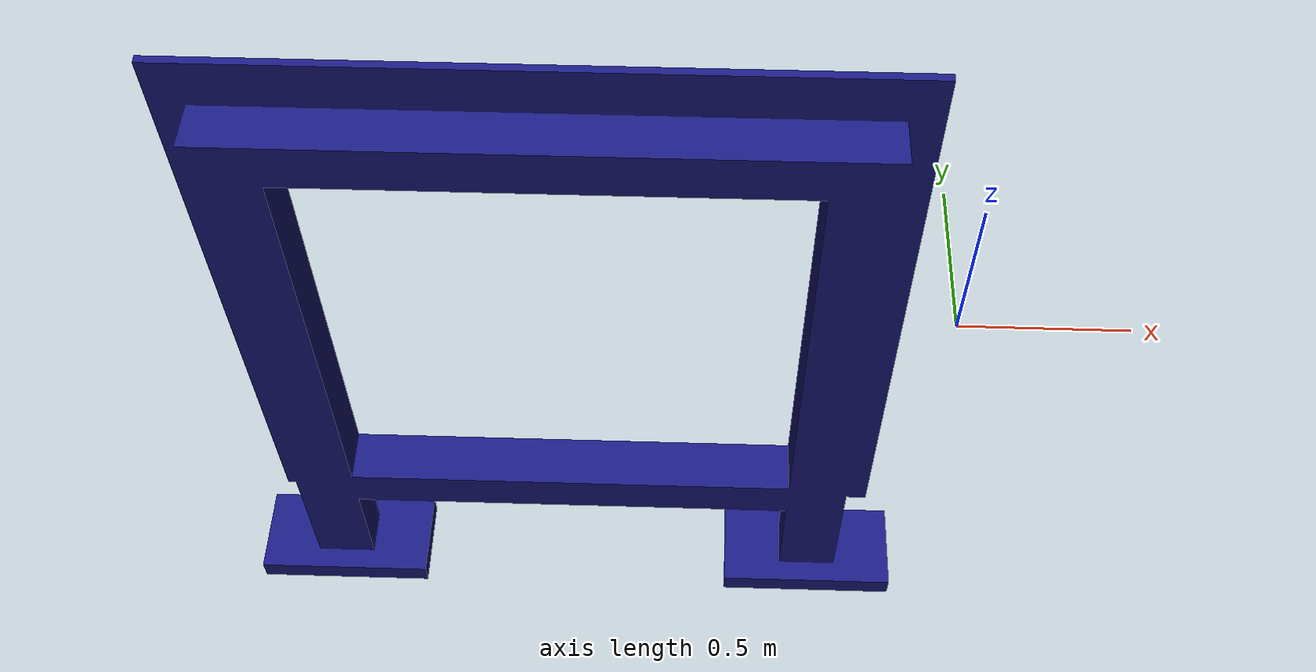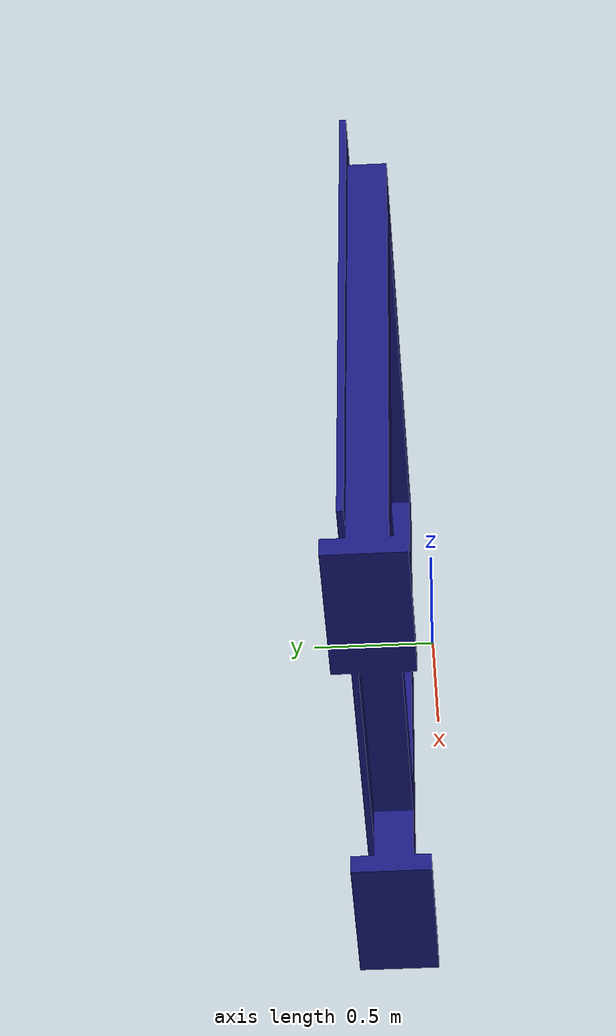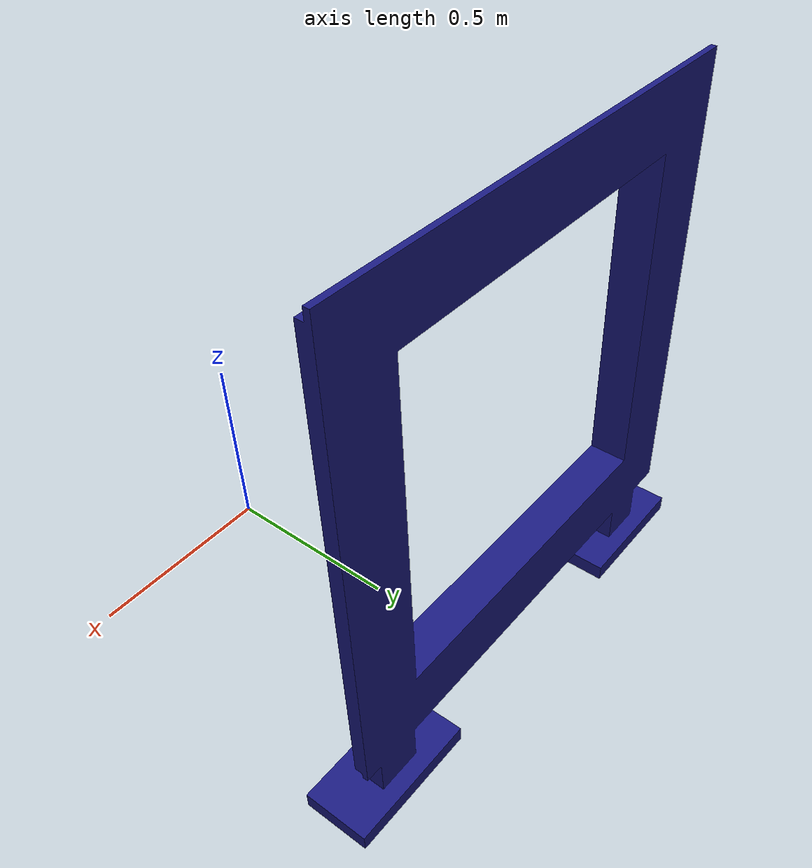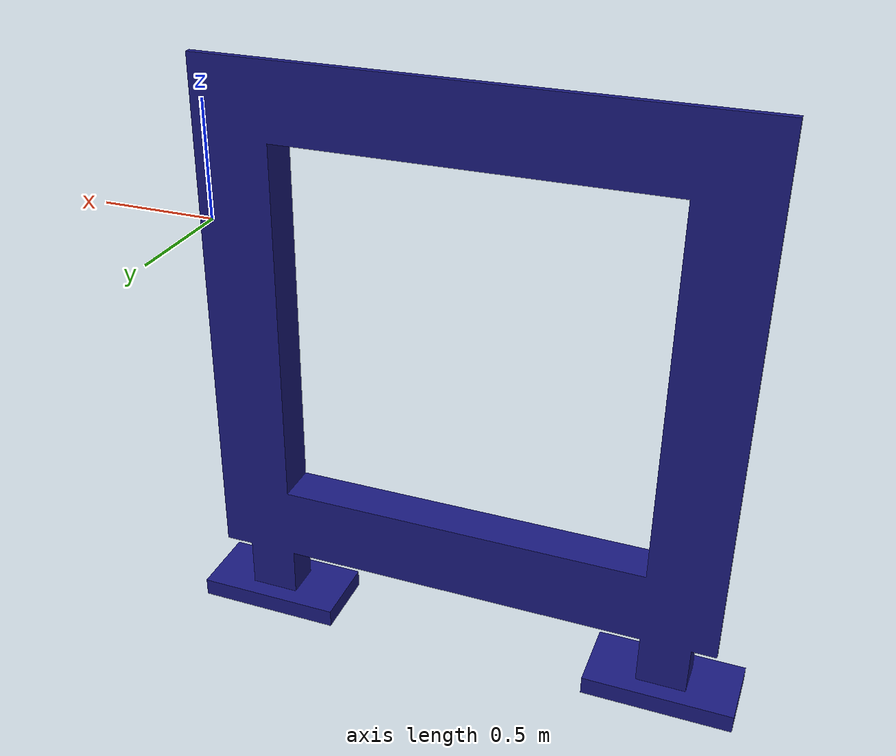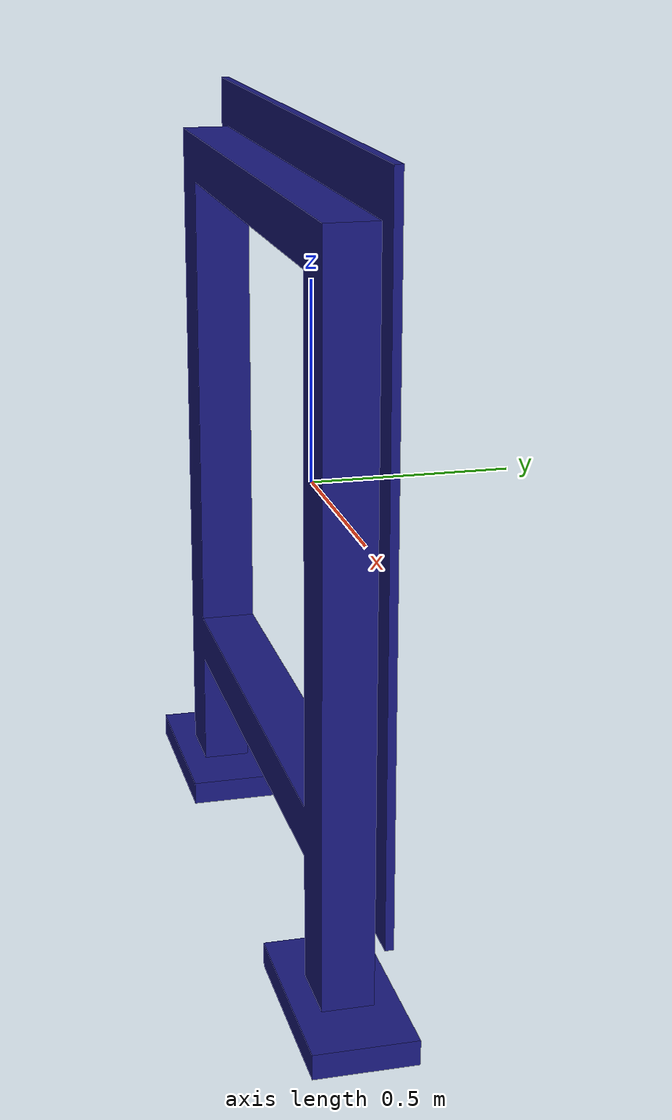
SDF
<?xml version="1.0" ?>
<sdf version="1.5">
  <model name="AlphaPilotGate">
    <pose>0 0 0.75  0 3.1415 0</pose>
    <static>true</static>
    <link name="link">
      <inertial>
        <mass>40.0</mass>
        <inertia>
          <ixx>1</ixx>
          <ixy>0</ixy>
          <ixz>0</ixz>
          <iyy>1</iyy>
          <iyz>0</iyz>
          <izz>1</izz>
        </inertia>
      </inertial>

        <collision name = "collision">
     	  <origin rpy="0 0 0" xyz="0.15 0 0.35"/>
            <geometry>
              <mesh>
            	<uri>model://AlphaPilotGate/Meshes/AlphaPilotGate.STL</uri>
	    	<scale> 0.001 0.001 0.001 </scale>
              </mesh>
     	    </geometry>
   	</collision>

      <visual name="visual">
        <geometry>
          <mesh>
            <uri>model://AlphaPilotGate/Meshes/AlphaPilotGate.STL</uri>
	    <scale> 0.001 0.001 0.001 </scale>
          </mesh>
	</geometry>
	<material>
	  <ambient>0.1 0.1 0.5 1</ambient>
	  <diffuse>0.1 0.1 0.5 1</diffuse>
	  <specular>0 0 0 0</specular>
	  <emissive>0 0 0 1</emissive>
	</material>
      </visual>
    </link>
  </model>
</sdf>
